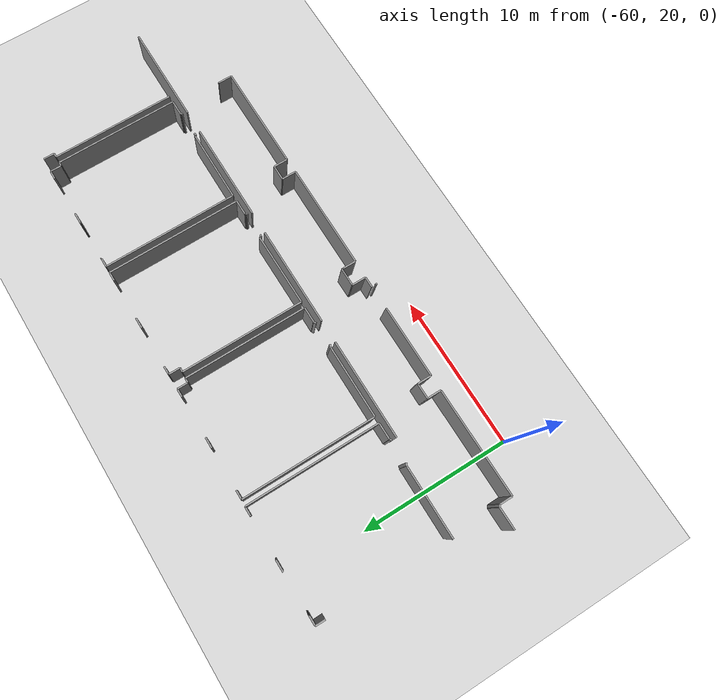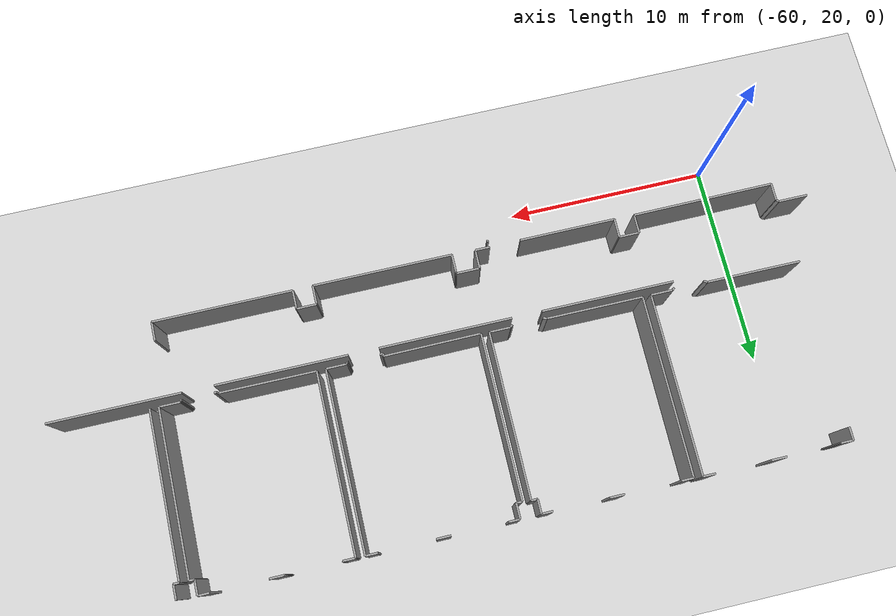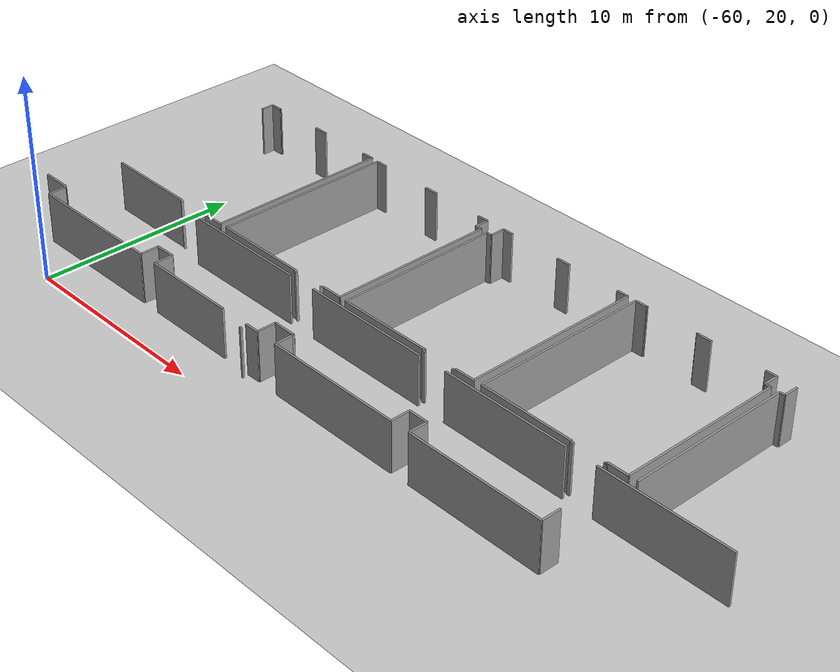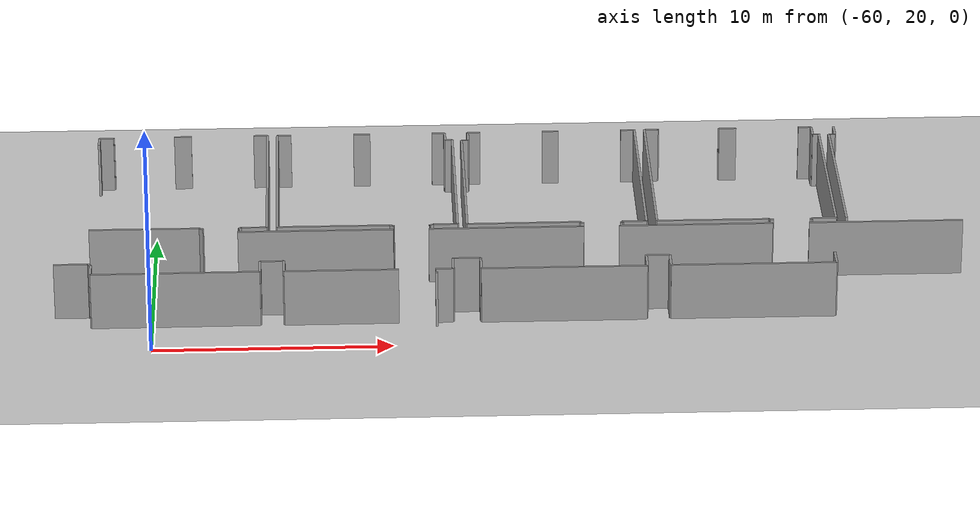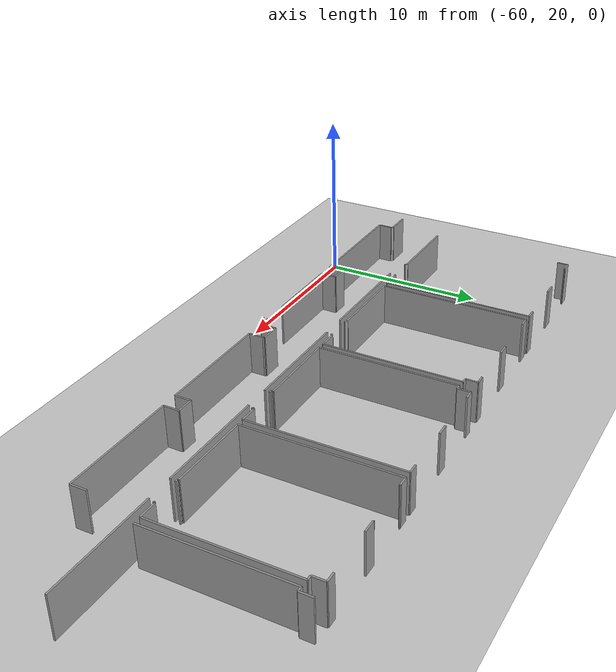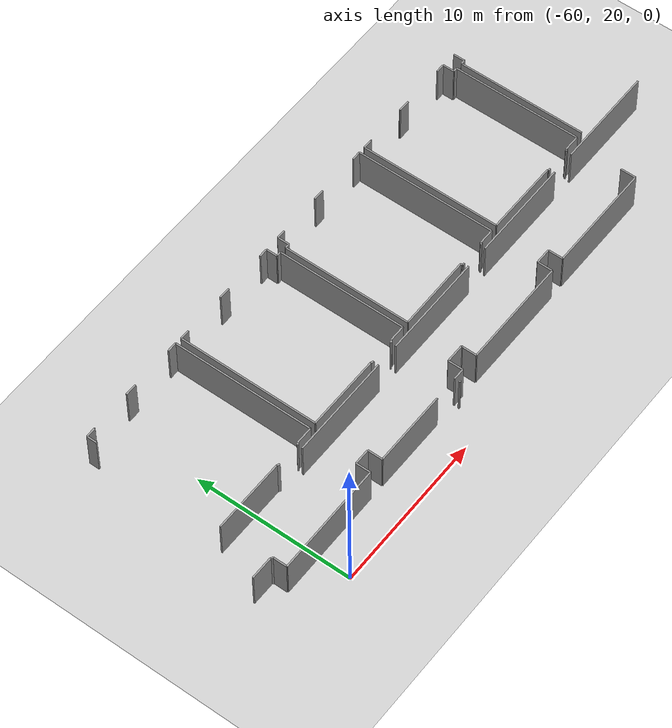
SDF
<sdf version="1.6">
 <world name="default">
  <model name="ground_plane">
   <static>1</static>
   <link name="link">
    <collision name="collision">
     <geometry><plane><normal>0 0 1</normal><size>100 100</size></plane></geometry>
     <surface><friction><ode><mu>100</mu><mu2>50</mu2></ode></friction></surface>
    </collision>
    <visual name="visual">
     <cast_shadows>0</cast_shadows>
     <geometry><plane><normal>0 0 1</normal><size>100 100</size></plane></geometry>
     <material>
      <script><uri>file://media/materials/scripts/gazebo.material</uri><name>Gazebo/Grey</name></script>
     </material>
    </visual>
   </link>
  </model>
  <model name="0510035739_A_40_1_102">
   <static>1</static>
   <link name="Wall_183">
    <collision name="Wall_183_Collision">
     <geometry><box><size>0.0985770015016 0.1 2.5</size></box></geometry>
     <pose>0.0492885007508 0 1.25 0 0 0</pose>
    </collision>
    <visual name="Wall_183_Visual">
     <pose>0.0492885007508 0 1.25 0 0 0</pose>
     <geometry><box><size>0.0985770015016 0.1 2.5</size></box></geometry>
     <material>
      <script><uri>file://media/materials/scripts/gazebo.material</uri><name>Gazebo/Grey</name></script>
      <ambient>1 1 1 1</ambient>
     </material>
    </visual>
    <pose>44.3222066984 -27.9956137055 0 0 0 -1.57079632679</pose>
   </link>
   <link name="Wall_200">
    <collision name="Wall_200_Collision">
     <geometry><box><size>0.861211478235 0.1 2.5</size></box></geometry>
     <pose>0.430605739117 0 1.25 0 0 0</pose>
    </collision>
    <visual name="Wall_200_Visual">
     <pose>0.430605739117 0 1.25 0 0 0</pose>
     <geometry><box><size>0.861211478235 0.1 2.5</size></box></geometry>
     <material>
      <script><uri>file://media/materials/scripts/gazebo.material</uri><name>Gazebo/Grey</name></script>
      <ambient>1 1 1 1</ambient>
     </material>
    </visual>
    <pose>29.9633329215 -27.7447135854 0 0 0 1.57079632679</pose>
   </link>
   <link name="Wall_201">
    <collision name="Wall_201_Collision">
     <geometry><box><size>0.152452766643 0.1 2.5</size></box></geometry>
     <pose>0.0762263833216 0 1.25 0 0 0</pose>
    </collision>
    <visual name="Wall_201_Visual">
     <pose>0.0762263833216 0 1.25 0 0 0</pose>
     <geometry><box><size>0.152452766643 0.1 2.5</size></box></geometry>
     <material>
      <script><uri>file://media/materials/scripts/gazebo.material</uri><name>Gazebo/Grey</name></script>
      <ambient>1 1 1 1</ambient>
     </material>
    </visual>
    <pose>29.9633329215 -26.8835021072 0 0 0 2.41411778917</pose>
   </link>
   <link name="Wall_202">
    <collision name="Wall_202_Collision">
     <geometry><box><size>1.44375825455 0.1 2.5</size></box></geometry>
     <pose>0.721879127275 0 1.25 0 0 0</pose>
    </collision>
    <visual name="Wall_202_Visual">
     <pose>0.721879127275 0 1.25 0 0 0</pose>
     <geometry><box><size>1.44375825455 0.1 2.5</size></box></geometry>
     <material>
      <script><uri>file://media/materials/scripts/gazebo.material</uri><name>Gazebo/Grey</name></script>
      <ambient>1 1 1 1</ambient>
     </material>
    </visual>
    <pose>29.849472664 -26.7821231754 0 0 0 3.14159265359</pose>
   </link>
   <link name="Wall_208">
    <collision name="Wall_208_Collision">
     <geometry><box><size>6.55447907659 0.1 2.5</size></box></geometry>
     <pose>3.27723953829 0 1.25 0 0 0</pose>
    </collision>
    <visual name="Wall_208_Visual">
     <pose>3.27723953829 0 1.25 0 0 0</pose>
     <geometry><box><size>6.55447907659 0.1 2.5</size></box></geometry>
     <material>
      <script><uri>file://media/materials/scripts/gazebo.material</uri><name>Gazebo/Grey</name></script>
      <ambient>1 1 1 1</ambient>
     </material>
    </visual>
    <pose>36.0397008048 -24.0087216448 0 0 0 0.0</pose>
   </link>
   <link name="Wall_209">
    <collision name="Wall_209_Collision">
     <geometry><box><size>6.54276191362 0.1 2.5</size></box></geometry>
     <pose>3.27138095681 0 1.25 0 0 0</pose>
    </collision>
    <visual name="Wall_209_Visual">
     <pose>3.27138095681 0 1.25 0 0 0</pose>
     <geometry><box><size>6.54276191362 0.1 2.5</size></box></geometry>
     <material>
      <script><uri>file://media/materials/scripts/gazebo.material</uri><name>Gazebo/Grey</name></script>
      <ambient>1 1 1 1</ambient>
     </material>
    </visual>
    <pose>44.0855709506 -24.0087216448 0 0 0 0.0</pose>
   </link>
   <link name="Wall_210">
    <collision name="Wall_210_Collision">
     <geometry><box><size>6.49512909894 0.1 2.5</size></box></geometry>
     <pose>3.24756454947 0 1.25 0 0 0</pose>
    </collision>
    <visual name="Wall_210_Visual">
     <pose>3.24756454947 0 1.25 0 0 0</pose>
     <geometry><box><size>6.49512909894 0.1 2.5</size></box></geometry>
     <material>
      <script><uri>file://media/materials/scripts/gazebo.material</uri><name>Gazebo/Grey</name></script>
      <ambient>1 1 1 1</ambient>
     </material>
    </visual>
    <pose>52.1209975381 -24.0087216448 0 0 0 0.0</pose>
   </link>
   <link name="Wall_211">
    <collision name="Wall_211_Collision">
     <geometry><box><size>6.51168595965 0.1 2.5</size></box></geometry>
     <pose>3.25584297983 0 1.25 0 0 0</pose>
    </collision>
    <visual name="Wall_211_Visual">
     <pose>3.25584297983 0 1.25 0 0 0</pose>
     <geometry><box><size>6.51168595965 0.1 2.5</size></box></geometry>
     <material>
      <script><uri>file://media/materials/scripts/gazebo.material</uri><name>Gazebo/Grey</name></script>
      <ambient>1 1 1 1</ambient>
     </material>
    </visual>
    <pose>60.1571882884 -24.0087216448 0 0 0 0.0</pose>
   </link>
   <link name="Wall_224">
    <collision name="Wall_224_Collision">
     <geometry><box><size>0.954694061054 0.1 2.5</size></box></geometry>
     <pose>0.477347030527 0 1.25 0 0 0</pose>
    </collision>
    <visual name="Wall_224_Visual">
     <pose>0.477347030527 0 1.25 0 0 0</pose>
     <geometry><box><size>0.954694061054 0.1 2.5</size></box></geometry>
     <material>
      <script><uri>file://media/materials/scripts/gazebo.material</uri><name>Gazebo/Grey</name></script>
      <ambient>1 1 1 1</ambient>
     </material>
    </visual>
    <pose>60.9812105103 -26.7854345475 0 0 0 -1.57079632679</pose>
   </link>
   <link name="Wall_225">
    <collision name="Wall_225_Collision">
     <geometry><box><size>6.90039010511 0.1 2.5</size></box></geometry>
     <pose>3.45019505256 0 1.25 0 0 0</pose>
    </collision>
    <visual name="Wall_225_Visual">
     <pose>3.45019505256 0 1.25 0 0 0</pose>
     <geometry><box><size>6.90039010511 0.1 2.5</size></box></geometry>
     <material>
      <script><uri>file://media/materials/scripts/gazebo.material</uri><name>Gazebo/Grey</name></script>
      <ambient>1 1 1 1</ambient>
     </material>
    </visual>
    <pose>60.9812105103 -27.7401286086 0 0 0 3.14159265359</pose>
   </link>
   <link name="Wall_226">
    <collision name="Wall_226_Collision">
     <geometry><box><size>0.938137200337 0.1 2.5</size></box></geometry>
     <pose>0.469068600168 0 1.25 0 0 0</pose>
    </collision>
    <visual name="Wall_226_Visual">
     <pose>0.469068600168 0 1.25 0 0 0</pose>
     <geometry><box><size>0.938137200337 0.1 2.5</size></box></geometry>
     <material>
      <script><uri>file://media/materials/scripts/gazebo.material</uri><name>Gazebo/Grey</name></script>
      <ambient>1 1 1 1</ambient>
     </material>
    </visual>
    <pose>54.0808204052 -27.7401286086 0 0 0 1.57079632679</pose>
   </link>
   <link name="Wall_227">
    <collision name="Wall_227_Collision">
     <geometry><box><size>0.988062503423 0.1 2.5</size></box></geometry>
     <pose>0.494031251711 0 1.25 0 0 0</pose>
    </collision>
    <visual name="Wall_227_Visual">
     <pose>0.494031251711 0 1.25 0 0 0</pose>
     <geometry><box><size>0.988062503423 0.1 2.5</size></box></geometry>
     <material>
      <script><uri>file://media/materials/scripts/gazebo.material</uri><name>Gazebo/Grey</name></script>
      <ambient>1 1 1 1</ambient>
     </material>
    </visual>
    <pose>54.0808204052 -26.8019914083 0 0 0 3.14159265359</pose>
   </link>
   <link name="Wall_228">
    <collision name="Wall_228_Collision">
     <geometry><box><size>0.954694061054 0.1 2.5</size></box></geometry>
     <pose>0.477347030527 0 1.25 0 0 0</pose>
    </collision>
    <visual name="Wall_228_Visual">
     <pose>0.477347030527 0 1.25 0 0 0</pose>
     <geometry><box><size>0.954694061054 0.1 2.5</size></box></geometry>
     <material>
      <script><uri>file://media/materials/scripts/gazebo.material</uri><name>Gazebo/Grey</name></script>
      <ambient>1 1 1 1</ambient>
     </material>
    </visual>
    <pose>53.0927579018 -26.8019914083 0 0 0 -1.57079632679</pose>
   </link>
   <link name="Wall_229">
    <collision name="Wall_229_Collision">
     <geometry><box><size>6.90879589594 0.1 2.5</size></box></geometry>
     <pose>3.45439794797 0 1.25 0 0 0</pose>
    </collision>
    <visual name="Wall_229_Visual">
     <pose>3.45439794797 0 1.25 0 0 0</pose>
     <geometry><box><size>6.90879589594 0.1 2.5</size></box></geometry>
     <material>
      <script><uri>file://media/materials/scripts/gazebo.material</uri><name>Gazebo/Grey</name></script>
      <ambient>1 1 1 1</ambient>
     </material>
    </visual>
    <pose>53.0927579018 -27.7566854693 0 0 0 3.14159265359</pose>
   </link>
   <link name="Wall_230">
    <collision name="Wall_230_Collision">
     <geometry><box><size>0.867070059719 0.1 2.5</size></box></geometry>
     <pose>0.43353502986 0 1.25 0 0 0</pose>
    </collision>
    <visual name="Wall_230_Visual">
     <pose>0.43353502986 0 1.25 0 0 0</pose>
     <geometry><box><size>0.867070059719 0.1 2.5</size></box></geometry>
     <material>
      <script><uri>file://media/materials/scripts/gazebo.material</uri><name>Gazebo/Grey</name></script>
      <ambient>1 1 1 1</ambient>
     </material>
    </visual>
    <pose>46.1839620058 -27.7566854693 0 0 0 1.57079632679</pose>
   </link>
   <link name="Wall_231">
    <collision name="Wall_231_Collision">
     <geometry><box><size>0.105199745789 0.1 2.5</size></box></geometry>
     <pose>0.0525998728943 0 1.25 0 0 0</pose>
    </collision>
    <visual name="Wall_231_Visual">
     <pose>0.0525998728943 0 1.25 0 0 0</pose>
     <geometry><box><size>0.105199745789 0.1 2.5</size></box></geometry>
     <material>
      <script><uri>file://media/materials/scripts/gazebo.material</uri><name>Gazebo/Grey</name></script>
      <ambient>1 1 1 1</ambient>
     </material>
    </visual>
    <pose>46.1839620058 -26.8896154096 0 0 0 1.57079632679</pose>
   </link>
   <link name="Wall_232">
    <collision name="Wall_232_Collision">
     <geometry><box><size>1.16840492477 0.1 2.5</size></box></geometry>
     <pose>0.584202462387 0 1.25 0 0 0</pose>
    </collision>
    <visual name="Wall_232_Visual">
     <pose>0.584202462387 0 1.25 0 0 0</pose>
     <geometry><box><size>1.16840492477 0.1 2.5</size></box></geometry>
     <material>
      <script><uri>file://media/materials/scripts/gazebo.material</uri><name>Gazebo/Grey</name></script>
      <ambient>1 1 1 1</ambient>
     </material>
    </visual>
    <pose>46.1839620058 -26.7844156638 0 0 0 3.14159265359</pose>
   </link>
   <link name="Wall_233">
    <collision name="Wall_233_Collision">
     <geometry><box><size>0.938391921271 0.1 2.5</size></box></geometry>
     <pose>0.469195960635 0 1.25 0 0 0</pose>
    </collision>
    <visual name="Wall_233_Visual">
     <pose>0.469195960635 0 1.25 0 0 0</pose>
     <geometry><box><size>0.938391921271 0.1 2.5</size></box></geometry>
     <material>
      <script><uri>file://media/materials/scripts/gazebo.material</uri><name>Gazebo/Grey</name></script>
      <ambient>1 1 1 1</ambient>
     </material>
    </visual>
    <pose>45.0155570811 -26.7844156638 0 0 0 -1.57079632679</pose>
   </link>
   <link name="Wall_234">
    <collision name="Wall_234_Collision">
     <geometry><box><size>0.72773770876 0.1 2.5</size></box></geometry>
     <pose>0.36386885438 0 1.25 0 0 0</pose>
    </collision>
    <visual name="Wall_234_Visual">
     <pose>0.36386885438 0 1.25 0 0 0</pose>
     <geometry><box><size>0.72773770876 0.1 2.5</size></box></geometry>
     <material>
      <script><uri>file://media/materials/scripts/gazebo.material</uri><name>Gazebo/Grey</name></script>
      <ambient>1 1 1 1</ambient>
     </material>
    </visual>
    <pose>45.0155570811 -27.7228075851 0 0 0 3.14159265359</pose>
   </link>
   <link name="Wall_235">
    <collision name="Wall_235_Collision">
     <geometry><box><size>4.75920593296 0.1 2.5</size></box></geometry>
     <pose>2.37960296648 0 1.25 0 0 0</pose>
    </collision>
    <visual name="Wall_235_Visual">
     <pose>2.37960296648 0 1.25 0 0 0</pose>
     <geometry><box><size>4.75920593296 0.1 2.5</size></box></geometry>
     <material>
      <script><uri>file://media/materials/scripts/gazebo.material</uri><name>Gazebo/Grey</name></script>
      <ambient>1 1 1 1</ambient>
     </material>
    </visual>
    <pose>42.7556729536 -27.7228075851 0 0 0 3.14159265359</pose>
   </link>
   <link name="Wall_236">
    <collision name="Wall_236_Collision">
     <geometry><box><size>0.938391921271 0.1 2.5</size></box></geometry>
     <pose>0.469195960635 0 1.25 0 0 0</pose>
    </collision>
    <visual name="Wall_236_Visual">
     <pose>0.469195960635 0 1.25 0 0 0</pose>
     <geometry><box><size>0.938391921271 0.1 2.5</size></box></geometry>
     <material>
      <script><uri>file://media/materials/scripts/gazebo.material</uri><name>Gazebo/Grey</name></script>
      <ambient>1 1 1 1</ambient>
     </material>
    </visual>
    <pose>37.9964670206 -27.7228075851 0 0 0 1.57079632679</pose>
   </link>
   <link name="Wall_237">
    <collision name="Wall_237_Collision">
     <geometry><box><size>1.00538352694 0.1 2.5</size></box></geometry>
     <pose>0.502691763471 0 1.25 0 0 0</pose>
    </collision>
    <visual name="Wall_237_Visual">
     <pose>0.502691763471 0 1.25 0 0 0</pose>
     <geometry><box><size>1.00538352694 0.1 2.5</size></box></geometry>
     <material>
      <script><uri>file://media/materials/scripts/gazebo.material</uri><name>Gazebo/Grey</name></script>
      <ambient>1 1 1 1</ambient>
     </material>
    </visual>
    <pose>37.9964670206 -26.7844156638 0 0 0 3.14159265359</pose>
   </link>
   <link name="Wall_238">
    <collision name="Wall_238_Collision">
     <geometry><box><size>0.928712525775 0.1 2.5</size></box></geometry>
     <pose>0.464356262887 0 1.25 0 0 0</pose>
    </collision>
    <visual name="Wall_238_Visual">
     <pose>0.464356262887 0 1.25 0 0 0</pose>
     <geometry><box><size>0.928712525775 0.1 2.5</size></box></geometry>
     <material>
      <script><uri>file://media/materials/scripts/gazebo.material</uri><name>Gazebo/Grey</name></script>
      <ambient>1 1 1 1</ambient>
     </material>
    </visual>
    <pose>36.9910834937 -26.7844156638 0 0 0 -1.57079632679</pose>
   </link>
   <link name="Wall_239">
    <collision name="Wall_239_Collision">
     <geometry><box><size>7.02782155023 0.1 2.5</size></box></geometry>
     <pose>3.51391077511 0 1.25 0 0 0</pose>
    </collision>
    <visual name="Wall_239_Visual">
     <pose>3.51391077511 0 1.25 0 0 0</pose>
     <geometry><box><size>7.02782155023 0.1 2.5</size></box></geometry>
     <material>
      <script><uri>file://media/materials/scripts/gazebo.material</uri><name>Gazebo/Grey</name></script>
      <ambient>1 1 1 1</ambient>
     </material>
    </visual>
    <pose>36.9910834937 -27.7131281896 0 0 0 -3.13709830183</pose>
   </link>
   <link name="Wall_297">
    <collision name="Wall_297_Collision">
     <geometry><box><size>0.64597228891 0.1 2.5</size></box></geometry>
     <pose>0.322986144455 0 1.25 0 0 0</pose>
    </collision>
    <visual name="Wall_297_Visual">
     <pose>0.322986144455 0 1.25 0 0 0</pose>
     <geometry><box><size>0.64597228891 0.1 2.5</size></box></geometry>
     <material>
      <script><uri>file://media/materials/scripts/gazebo.material</uri><name>Gazebo/Grey</name></script>
      <ambient>1 1 1 1</ambient>
     </material>
    </visual>
    <pose>29.9381155491 -15.3212094659 0 0 0 1.57079632679</pose>
   </link>
   <link name="Wall_298">
    <collision name="Wall_298_Collision">
     <geometry><box><size>0.608018869727 0.1 2.5</size></box></geometry>
     <pose>0.304009434863 0 1.25 0 0 0</pose>
    </collision>
    <visual name="Wall_298_Visual">
     <pose>0.304009434863 0 1.25 0 0 0</pose>
     <geometry><box><size>0.608018869727 0.1 2.5</size></box></geometry>
     <material>
      <script><uri>file://media/materials/scripts/gazebo.material</uri><name>Gazebo/Grey</name></script>
      <ambient>1 1 1 1</ambient>
     </material>
    </visual>
    <pose>29.9381155491 -14.675237177 0 0 0 0.0</pose>
   </link>
   <link name="Wall_299">
    <collision name="Wall_299_Collision">
     <geometry><box><size>0.0379534191828 0.1 2.5</size></box></geometry>
     <pose>0.0189767095914 0 1.25 0 0 0</pose>
    </collision>
    <visual name="Wall_299_Visual">
     <pose>0.0189767095914 0 1.25 0 0 0</pose>
     <geometry><box><size>0.0379534191828 0.1 2.5</size></box></geometry>
     <material>
      <script><uri>file://media/materials/scripts/gazebo.material</uri><name>Gazebo/Grey</name></script>
      <ambient>1 1 1 1</ambient>
     </material>
    </visual>
    <pose>30.5461344188 -14.675237177 0 0 0 1.57079632679</pose>
   </link>
   <link name="Wall_300">
    <collision name="Wall_300_Collision">
     <geometry><box><size>0.747351220686 0.1 2.5</size></box></geometry>
     <pose>0.373675610343 0 1.25 0 0 0</pose>
    </collision>
    <visual name="Wall_300_Visual">
     <pose>0.373675610343 0 1.25 0 0 0</pose>
     <geometry><box><size>0.747351220686 0.1 2.5</size></box></geometry>
     <material>
      <script><uri>file://media/materials/scripts/gazebo.material</uri><name>Gazebo/Grey</name></script>
      <ambient>1 1 1 1</ambient>
     </material>
    </visual>
    <pose>33.1926849242 -14.6372837578 0 0 0 0.0</pose>
   </link>
   <link name="Wall_301">
    <collision name="Wall_301_Collision">
     <geometry><box><size>0.620754916432 0.1 2.5</size></box></geometry>
     <pose>0.310377458216 0 1.25 0 0 0</pose>
    </collision>
    <visual name="Wall_301_Visual">
     <pose>0.310377458216 0 1.25 0 0 0</pose>
     <geometry><box><size>0.620754916432 0.1 2.5</size></box></geometry>
     <material>
      <script><uri>file://media/materials/scripts/gazebo.material</uri><name>Gazebo/Grey</name></script>
      <ambient>1 1 1 1</ambient>
     </material>
    </visual>
    <pose>36.6500121629 -14.6372837578 0 0 0 0.0</pose>
   </link>
   <link name="Wall_302">
    <collision name="Wall_302_Collision">
     <geometry><box><size>8.9679599273 0.1 2.5</size></box></geometry>
     <pose>4.48397996365 0 1.25 0 0 0</pose>
    </collision>
    <visual name="Wall_302_Visual">
     <pose>4.48397996365 0 1.25 0 0 0</pose>
     <geometry><box><size>8.9679599273 0.1 2.5</size></box></geometry>
     <material>
      <script><uri>file://media/materials/scripts/gazebo.material</uri><name>Gazebo/Grey</name></script>
      <ambient>1 1 1 1</ambient>
     </material>
    </visual>
    <pose>37.2707670794 -14.6372837578 0 0 0 -1.57079632679</pose>
   </link>
   <link name="Wall_303">
    <collision name="Wall_303_Collision">
     <geometry><box><size>1.08281869091 0.1 2.5</size></box></geometry>
     <pose>0.541409345456 0 1.25 0 0 0</pose>
    </collision>
    <visual name="Wall_303_Visual">
     <pose>0.541409345456 0 1.25 0 0 0</pose>
     <geometry><box><size>1.08281869091 0.1 2.5</size></box></geometry>
     <material>
      <script><uri>file://media/materials/scripts/gazebo.material</uri><name>Gazebo/Grey</name></script>
      <ambient>1 1 1 1</ambient>
     </material>
    </visual>
    <pose>37.2707670794 -23.6052436851 0 0 0 3.14159265359</pose>
   </link>
   <link name="Wall_304">
    <collision name="Wall_304_Collision">
     <geometry><box><size>0.134577774466 0.1 2.5</size></box></geometry>
     <pose>0.0672888872328 0 1.25 0 0 0</pose>
    </collision>
    <visual name="Wall_304_Visual">
     <pose>0.0672888872328 0 1.25 0 0 0</pose>
     <geometry><box><size>0.134577774466 0.1 2.5</size></box></geometry>
     <material>
      <script><uri>file://media/materials/scripts/gazebo.material</uri><name>Gazebo/Grey</name></script>
      <ambient>1 1 1 1</ambient>
     </material>
    </visual>
    <pose>36.1879483884 -23.6052436851 0 0 0 -2.43255578818</pose>
   </link>
   <link name="Wall_305">
    <collision name="Wall_305_Collision">
     <geometry><box><size>0.186364530862 0.1 2.5</size></box></geometry>
     <pose>0.0931822654311 0 1.25 0 0 0</pose>
    </collision>
    <visual name="Wall_305_Visual">
     <pose>0.0931822654311 0 1.25 0 0 0</pose>
     <geometry><box><size>0.186364530862 0.1 2.5</size></box></geometry>
     <material>
      <script><uri>file://media/materials/scripts/gazebo.material</uri><name>Gazebo/Grey</name></script>
      <ambient>1 1 1 1</ambient>
     </material>
    </visual>
    <pose>34.5936500618 -23.6928676865 0 0 0 2.67672255131</pose>
   </link>
   <link name="Wall_306">
    <collision name="Wall_306_Collision">
     <geometry><box><size>4.6563189919 0.1 2.5</size></box></geometry>
     <pose>2.32815949595 0 1.25 0 0 0</pose>
    </collision>
    <visual name="Wall_306_Visual">
     <pose>2.32815949595 0 1.25 0 0 0</pose>
     <geometry><box><size>4.6563189919 0.1 2.5</size></box></geometry>
     <material>
      <script><uri>file://media/materials/scripts/gazebo.material</uri><name>Gazebo/Grey</name></script>
      <ambient>1 1 1 1</ambient>
     </material>
    </visual>
    <pose>34.4270625709 -23.6093192201 0 0 0 3.13863861404</pose>
   </link>
   <link name="Wall_307">
    <collision name="Wall_307_Collision">
     <geometry><box><size>8.92796874065 0.1 2.5</size></box></geometry>
     <pose>4.46398437032 0 1.25 0 0 0</pose>
    </collision>
    <visual name="Wall_307_Visual">
     <pose>4.46398437032 0 1.25 0 0 0</pose>
     <geometry><box><size>8.92796874065 0.1 2.5</size></box></geometry>
     <material>
      <script><uri>file://media/materials/scripts/gazebo.material</uri><name>Gazebo/Grey</name></script>
      <ambient>1 1 1 1</ambient>
     </material>
    </visual>
    <pose>37.6918207834 -23.5988756618 0 0 0 1.57079632679</pose>
   </link>
   <link name="Wall_308">
    <collision name="Wall_308_Collision">
     <geometry><box><size>0.599103637033 0.1 2.5</size></box></geometry>
     <pose>0.299551818516 0 1.25 0 0 0</pose>
    </collision>
    <visual name="Wall_308_Visual">
     <pose>0.299551818516 0 1.25 0 0 0</pose>
     <geometry><box><size>0.599103637033 0.1 2.5</size></box></geometry>
     <material>
      <script><uri>file://media/materials/scripts/gazebo.material</uri><name>Gazebo/Grey</name></script>
      <ambient>1 1 1 1</ambient>
     </material>
    </visual>
    <pose>37.6918207834 -14.6709069211 0 0 0 0.0</pose>
   </link>
   <link name="Wall_309">
    <collision name="Wall_309_Collision">
     <geometry><box><size>0.726718825023 0.1 2.5</size></box></geometry>
     <pose>0.363359412512 0 1.25 0 0 0</pose>
    </collision>
    <visual name="Wall_309_Visual">
     <pose>0.363359412512 0 1.25 0 0 0</pose>
     <geometry><box><size>0.726718825023 0.1 2.5</size></box></geometry>
     <material>
      <script><uri>file://media/materials/scripts/gazebo.material</uri><name>Gazebo/Grey</name></script>
      <ambient>1 1 1 1</ambient>
     </material>
    </visual>
    <pose>41.0110892759 -14.6709069211 0 0 0 0.0</pose>
   </link>
   <link name="Wall_310">
    <collision name="Wall_310_Collision">
     <geometry><box><size>0.561659659718 0.1 2.5</size></box></geometry>
     <pose>0.280829829859 0 1.25 0 0 0</pose>
    </collision>
    <visual name="Wall_310_Visual">
     <pose>0.280829829859 0 1.25 0 0 0</pose>
     <geometry><box><size>0.561659659718 0.1 2.5</size></box></geometry>
     <material>
      <script><uri>file://media/materials/scripts/gazebo.material</uri><name>Gazebo/Grey</name></script>
      <ambient>1 1 1 1</ambient>
     </material>
    </visual>
    <pose>44.435812235 -14.6709069211 0 0 0 0.0</pose>
   </link>
   <link name="Wall_311">
    <collision name="Wall_311_Collision">
     <geometry><box><size>0.705831708426 0.1 2.5</size></box></geometry>
     <pose>0.352915854213 0 1.25 0 0 0</pose>
    </collision>
    <visual name="Wall_311_Visual">
     <pose>0.352915854213 0 1.25 0 0 0</pose>
     <geometry><box><size>0.705831708426 0.1 2.5</size></box></geometry>
     <material>
      <script><uri>file://media/materials/scripts/gazebo.material</uri><name>Gazebo/Grey</name></script>
      <ambient>1 1 1 1</ambient>
     </material>
    </visual>
    <pose>44.9974718947 -14.6709069211 0 0 0 -1.57079632679</pose>
   </link>
   <link name="Wall_312">
    <collision name="Wall_312_Collision">
     <geometry><box><size>0.312542586156 0.1 2.5</size></box></geometry>
     <pose>0.156271293078 0 1.25 0 0 0</pose>
    </collision>
    <visual name="Wall_312_Visual">
     <pose>0.156271293078 0 1.25 0 0 0</pose>
     <geometry><box><size>0.312542586156 0.1 2.5</size></box></geometry>
     <material>
      <script><uri>file://media/materials/scripts/gazebo.material</uri><name>Gazebo/Grey</name></script>
      <ambient>1 1 1 1</ambient>
     </material>
    </visual>
    <pose>44.9974718947 -15.3767386296 0 0 0 0.0</pose>
   </link>
   <link name="Wall_313">
    <collision name="Wall_313_Collision">
     <geometry><box><size>8.20303296216 0.1 2.5</size></box></geometry>
     <pose>4.10151648108 0 1.25 0 0 0</pose>
    </collision>
    <visual name="Wall_313_Visual">
     <pose>4.10151648108 0 1.25 0 0 0</pose>
     <geometry><box><size>8.20303296216 0.1 2.5</size></box></geometry>
     <material>
      <script><uri>file://media/materials/scripts/gazebo.material</uri><name>Gazebo/Grey</name></script>
      <ambient>1 1 1 1</ambient>
     </material>
    </visual>
    <pose>45.3100144809 -15.3767386296 0 0 0 -1.57079632679</pose>
   </link>
   <link name="Wall_314">
    <collision name="Wall_314_Collision">
     <geometry><box><size>1.02830841101 0.1 2.5</size></box></geometry>
     <pose>0.514154205506 0 1.25 0 0 0</pose>
    </collision>
    <visual name="Wall_314_Visual">
     <pose>0.514154205506 0 1.25 0 0 0</pose>
     <geometry><box><size>1.02830841101 0.1 2.5</size></box></geometry>
     <material>
      <script><uri>file://media/materials/scripts/gazebo.material</uri><name>Gazebo/Grey</name></script>
      <ambient>1 1 1 1</ambient>
     </material>
    </visual>
    <pose>45.3100144809 -23.5797715917 0 0 0 3.14159265359</pose>
   </link>
   <link name="Wall_315">
    <collision name="Wall_315_Collision">
     <geometry><box><size>0.174100407527 0.1 2.5</size></box></geometry>
     <pose>0.0870502037634 0 1.25 0 0 0</pose>
    </collision>
    <visual name="Wall_315_Visual">
     <pose>0.0870502037634 0 1.25 0 0 0</pose>
     <geometry><box><size>0.174100407527 0.1 2.5</size></box></geometry>
     <material>
      <script><uri>file://media/materials/scripts/gazebo.material</uri><name>Gazebo/Grey</name></script>
      <ambient>1 1 1 1</ambient>
     </material>
    </visual>
    <pose>44.2817060699 -23.5797715917 0 0 0 -2.5361405226</pose>
   </link>
   <link name="Wall_316">
    <collision name="Wall_316_Collision">
     <geometry><box><size>0.204486342414 0.1 2.5</size></box></geometry>
     <pose>0.102243171207 0 1.25 0 0 0</pose>
    </collision>
    <visual name="Wall_316_Visual">
     <pose>0.102243171207 0 1.25 0 0 0</pose>
     <geometry><box><size>0.204486342414 0.1 2.5</size></box></geometry>
     <material>
      <script><uri>file://media/materials/scripts/gazebo.material</uri><name>Gazebo/Grey</name></script>
      <ambient>1 1 1 1</ambient>
     </material>
    </visual>
    <pose>42.6374824402 -23.6788580351 0 0 0 2.78398833357</pose>
   </link>
   <link name="Wall_317">
    <collision name="Wall_317_Collision">
     <geometry><box><size>4.75411894545 0.1 2.5</size></box></geometry>
     <pose>2.37705947273 0 1.25 0 0 0</pose>
    </collision>
    <visual name="Wall_317_Visual">
     <pose>2.37705947273 0 1.25 0 0 0</pose>
     <geometry><box><size>4.75411894545 0.1 2.5</size></box></geometry>
     <material>
      <script><uri>file://media/materials/scripts/gazebo.material</uri><name>Gazebo/Grey</name></script>
      <ambient>1 1 1 1</ambient>
     </material>
    </visual>
    <pose>42.4459322977 -23.6072814526 0 0 0 3.1398245457</pose>
   </link>
   <link name="Wall_318">
    <collision name="Wall_318_Collision">
     <geometry><box><size>8.18749498518 0.1 2.5</size></box></geometry>
     <pose>4.09374749259 0 1.25 0 0 0</pose>
    </collision>
    <visual name="Wall_318_Visual">
     <pose>4.09374749259 0 1.25 0 0 0</pose>
     <geometry><box><size>8.18749498518 0.1 2.5</size></box></geometry>
     <material>
      <script><uri>file://media/materials/scripts/gazebo.material</uri><name>Gazebo/Grey</name></script>
      <ambient>1 1 1 1</ambient>
     </material>
    </visual>
    <pose>45.7147660452 -23.6052436851 0 0 0 1.57079632679</pose>
   </link>
   <link name="Wall_319">
    <collision name="Wall_319_Collision">
     <geometry><box><size>0.287070492745 0.1 2.5</size></box></geometry>
     <pose>0.143535246372 0 1.25 0 0 0</pose>
    </collision>
    <visual name="Wall_319_Visual">
     <pose>0.143535246372 0 1.25 0 0 0</pose>
     <geometry><box><size>0.287070492745 0.1 2.5</size></box></geometry>
     <material>
      <script><uri>file://media/materials/scripts/gazebo.material</uri><name>Gazebo/Grey</name></script>
      <ambient>1 1 1 1</ambient>
     </material>
    </visual>
    <pose>45.7147660452 -15.4177487 0 0 0 0.0</pose>
   </link>
   <link name="Wall_320">
    <collision name="Wall_320_Collision">
     <geometry><box><size>0.756521174314 0.1 2.5</size></box></geometry>
     <pose>0.378260587157 0 1.25 0 0 0</pose>
    </collision>
    <visual name="Wall_320_Visual">
     <pose>0.378260587157 0 1.25 0 0 0</pose>
     <geometry><box><size>0.756521174314 0.1 2.5</size></box></geometry>
     <material>
      <script><uri>file://media/materials/scripts/gazebo.material</uri><name>Gazebo/Grey</name></script>
      <ambient>1 1 1 1</ambient>
     </material>
    </visual>
    <pose>46.0018365379 -15.4177487 0 0 0 1.57079632679</pose>
   </link>
   <link name="Wall_321">
    <collision name="Wall_321_Collision">
     <geometry><box><size>0.545866961803 0.1 2.5</size></box></geometry>
     <pose>0.272933480902 0 1.25 0 0 0</pose>
    </collision>
    <visual name="Wall_321_Visual">
     <pose>0.272933480902 0 1.25 0 0 0</pose>
     <geometry><box><size>0.545866961803 0.1 2.5</size></box></geometry>
     <material>
      <script><uri>file://media/materials/scripts/gazebo.material</uri><name>Gazebo/Grey</name></script>
      <ambient>1 1 1 1</ambient>
     </material>
    </visual>
    <pose>46.0018365379 -14.6612275257 0 0 0 0.0</pose>
   </link>
   <link name="Wall_322">
    <collision name="Wall_322_Collision">
     <geometry><box><size>0.708633638701 0.1 2.5</size></box></geometry>
     <pose>0.354316819351 0 1.25 0 0 0</pose>
    </collision>
    <visual name="Wall_322_Visual">
     <pose>0.354316819351 0 1.25 0 0 0</pose>
     <geometry><box><size>0.708633638701 0.1 2.5</size></box></geometry>
     <material>
      <script><uri>file://media/materials/scripts/gazebo.material</uri><name>Gazebo/Grey</name></script>
      <ambient>1 1 1 1</ambient>
     </material>
    </visual>
    <pose>49.2673589133 -14.6612275257 0 0 0 0.0</pose>
   </link>
   <link name="Wall_323">
    <collision name="Wall_323_Collision">
     <geometry><box><size>0.593754497416 0.1 2.5</size></box></geometry>
     <pose>0.296877248708 0 1.25 0 0 0</pose>
    </collision>
    <visual name="Wall_323_Visual">
     <pose>0.296877248708 0 1.25 0 0 0</pose>
     <geometry><box><size>0.593754497416 0.1 2.5</size></box></geometry>
     <material>
      <script><uri>file://media/materials/scripts/gazebo.material</uri><name>Gazebo/Grey</name></script>
      <ambient>1 1 1 1</ambient>
     </material>
    </visual>
    <pose>52.70507264 -14.6612275257 0 0 0 0.0</pose>
   </link>
   <link name="Wall_324">
    <collision name="Wall_324_Collision">
     <geometry><box><size>8.94070478735 0.1 2.5</size></box></geometry>
     <pose>4.47035239368 0 1.25 0 0 0</pose>
    </collision>
    <visual name="Wall_324_Visual">
     <pose>4.47035239368 0 1.25 0 0 0</pose>
     <geometry><box><size>8.94070478735 0.1 2.5</size></box></geometry>
     <material>
      <script><uri>file://media/materials/scripts/gazebo.material</uri><name>Gazebo/Grey</name></script>
      <ambient>1 1 1 1</ambient>
     </material>
    </visual>
    <pose>53.2988271375 -14.6612275257 0 0 0 -1.57079632679</pose>
   </link>
   <link name="Wall_325">
    <collision name="Wall_325_Collision">
     <geometry><box><size>1.02219510859 0.1 2.5</size></box></geometry>
     <pose>0.511097554297 0 1.25 0 0 0</pose>
    </collision>
    <visual name="Wall_325_Visual">
     <pose>0.511097554297 0 1.25 0 0 0</pose>
     <geometry><box><size>1.02219510859 0.1 2.5</size></box></geometry>
     <material>
      <script><uri>file://media/materials/scripts/gazebo.material</uri><name>Gazebo/Grey</name></script>
      <ambient>1 1 1 1</ambient>
     </material>
    </visual>
    <pose>53.2988271375 -23.601932313 0 0 0 3.14159265359</pose>
   </link>
   <link name="Wall_326">
    <collision name="Wall_326_Collision">
     <geometry><box><size>0.0990864433698 0.1 2.5</size></box></geometry>
     <pose>0.0495432216849 0 1.25 0 0 0</pose>
    </collision>
    <visual name="Wall_326_Visual">
     <pose>0.0495432216849 0 1.25 0 0 0</pose>
     <geometry><box><size>0.0990864433698 0.1 2.5</size></box></geometry>
     <material>
      <script><uri>file://media/materials/scripts/gazebo.material</uri><name>Gazebo/Grey</name></script>
      <ambient>1 1 1 1</ambient>
     </material>
    </visual>
    <pose>52.2766320289 -23.601932313 0 0 0 -1.57079632679</pose>
   </link>
   <link name="Wall_327">
    <collision name="Wall_327_Collision">
     <geometry><box><size>0.0990864433698 0.1 2.5</size></box></geometry>
     <pose>0.0495432216849 0 1.25 0 0 0</pose>
    </collision>
    <visual name="Wall_327_Visual">
     <pose>0.0495432216849 0 1.25 0 0 0</pose>
     <geometry><box><size>0.0990864433698 0.1 2.5</size></box></geometry>
     <material>
      <script><uri>file://media/materials/scripts/gazebo.material</uri><name>Gazebo/Grey</name></script>
      <ambient>1 1 1 1</ambient>
     </material>
    </visual>
    <pose>52.2766320289 -23.7010187564 0 0 0 3.14159265359</pose>
   </link>
   <link name="Wall_328">
    <collision name="Wall_328_Collision">
     <geometry><box><size>0.154106165138 0.1 2.5</size></box></geometry>
     <pose>0.0770530825691 0 1.25 0 0 0</pose>
    </collision>
    <visual name="Wall_328_Visual">
     <pose>0.0770530825691 0 1.25 0 0 0</pose>
     <geometry><box><size>0.154106165138 0.1 2.5</size></box></geometry>
     <material>
      <script><uri>file://media/materials/scripts/gazebo.material</uri><name>Gazebo/Grey</name></script>
      <ambient>1 1 1 1</ambient>
     </material>
    </visual>
    <pose>50.6576257716 -23.7010187564 0 0 0 3.14159265359</pose>
   </link>
   <link name="Wall_329">
    <collision name="Wall_329_Collision">
     <geometry><box><size>0.121247164638 0.1 2.5</size></box></geometry>
     <pose>0.0606235823188 0 1.25 0 0 0</pose>
    </collision>
    <visual name="Wall_329_Visual">
     <pose>0.0606235823188 0 1.25 0 0 0</pose>
     <geometry><box><size>0.121247164638 0.1 2.5</size></box></geometry>
     <material>
      <script><uri>file://media/materials/scripts/gazebo.material</uri><name>Gazebo/Grey</name></script>
      <ambient>1 1 1 1</ambient>
     </material>
    </visual>
    <pose>50.5035196065 -23.7010187564 0 0 0 1.57079632679</pose>
   </link>
   <link name="Wall_330">
    <collision name="Wall_330_Collision">
     <geometry><box><size>4.78882130577 0.1 2.5</size></box></geometry>
     <pose>2.39441065288 0 1.25 0 0 0</pose>
    </collision>
    <visual name="Wall_330_Visual">
     <pose>2.39441065288 0 1.25 0 0 0</pose>
     <geometry><box><size>4.78882130577 0.1 2.5</size></box></geometry>
     <material>
      <script><uri>file://media/materials/scripts/gazebo.material</uri><name>Gazebo/Grey</name></script>
      <ambient>1 1 1 1</ambient>
     </material>
    </visual>
    <pose>50.5035196065 -23.5797715917 0 0 0 -3.13627355482</pose>
   </link>
   <link name="Wall_331">
    <collision name="Wall_331_Collision">
     <geometry><box><size>8.92363848477 0.1 2.5</size></box></geometry>
     <pose>4.46181924238 0 1.25 0 0 0</pose>
    </collision>
    <visual name="Wall_331_Visual">
     <pose>4.46181924238 0 1.25 0 0 0</pose>
     <geometry><box><size>8.92363848477 0.1 2.5</size></box></geometry>
     <material>
      <script><uri>file://media/materials/scripts/gazebo.material</uri><name>Gazebo/Grey</name></script>
      <ambient>1 1 1 1</ambient>
     </material>
    </visual>
    <pose>53.7412774 -23.5907245919 0 0 0 1.57079632679</pose>
   </link>
   <link name="Wall_332">
    <collision name="Wall_332_Collision">
     <geometry><box><size>0.598084753296 0.1 2.5</size></box></geometry>
     <pose>0.299042376648 0 1.25 0 0 0</pose>
    </collision>
    <visual name="Wall_332_Visual">
     <pose>0.299042376648 0 1.25 0 0 0</pose>
     <geometry><box><size>0.598084753296 0.1 2.5</size></box></geometry>
     <material>
      <script><uri>file://media/materials/scripts/gazebo.material</uri><name>Gazebo/Grey</name></script>
      <ambient>1 1 1 1</ambient>
     </material>
    </visual>
    <pose>53.7412774 -14.6670861071 0 0 0 0.0</pose>
   </link>
   <link name="Wall_333">
    <collision name="Wall_333_Collision">
     <geometry><box><size>0.0506894658884 0.1 2.5</size></box></geometry>
     <pose>0.0253447329442 0 1.25 0 0 0</pose>
    </collision>
    <visual name="Wall_333_Visual">
     <pose>0.0253447329442 0 1.25 0 0 0</pose>
     <geometry><box><size>0.0506894658884 0.1 2.5</size></box></geometry>
     <material>
      <script><uri>file://media/materials/scripts/gazebo.material</uri><name>Gazebo/Grey</name></script>
      <ambient>1 1 1 1</ambient>
     </material>
    </visual>
    <pose>54.3393621533 -14.6670861071 0 0 0 1.57079632679</pose>
   </link>
   <link name="Wall_334">
    <collision name="Wall_334_Collision">
     <geometry><box><size>0.036170372644 0.1 2.5</size></box></geometry>
     <pose>0.018085186322 0 1.25 0 0 0</pose>
    </collision>
    <visual name="Wall_334_Visual">
     <pose>0.018085186322 0 1.25 0 0 0</pose>
     <geometry><box><size>0.036170372644 0.1 2.5</size></box></geometry>
     <material>
      <script><uri>file://media/materials/scripts/gazebo.material</uri><name>Gazebo/Grey</name></script>
      <ambient>1 1 1 1</ambient>
     </material>
    </visual>
    <pose>57.0256491245 -14.6163966412 0 0 0 -1.57079632679</pose>
   </link>
   <link name="Wall_335">
    <collision name="Wall_335_Collision">
     <geometry><box><size>0.745822895082 0.1 2.5</size></box></geometry>
     <pose>0.372911447541 0 1.25 0 0 0</pose>
    </collision>
    <visual name="Wall_335_Visual">
     <pose>0.372911447541 0 1.25 0 0 0</pose>
     <geometry><box><size>0.745822895082 0.1 2.5</size></box></geometry>
     <material>
      <script><uri>file://media/materials/scripts/gazebo.material</uri><name>Gazebo/Grey</name></script>
      <ambient>1 1 1 1</ambient>
     </material>
    </visual>
    <pose>57.0256491245 -14.6525670139 0 0 0 0.0</pose>
   </link>
   <link name="Wall_336">
    <collision name="Wall_336_Collision">
     <geometry><box><size>0.564971031862 0.1 2.5</size></box></geometry>
     <pose>0.282485515931 0 1.25 0 0 0</pose>
    </collision>
    <visual name="Wall_336_Visual">
     <pose>0.282485515931 0 1.25 0 0 0</pose>
     <geometry><box><size>0.564971031862 0.1 2.5</size></box></geometry>
     <material>
      <script><uri>file://media/materials/scripts/gazebo.material</uri><name>Gazebo/Grey</name></script>
      <ambient>1 1 1 1</ambient>
     </material>
    </visual>
    <pose>60.5010615495 -14.6525670139 0 0 0 0.0</pose>
   </link>
   <link name="Wall_337">
    <collision name="Wall_337_Collision">
     <geometry><box><size>0.738690708927 0.1 2.5</size></box></geometry>
     <pose>0.369345354463 0 1.25 0 0 0</pose>
    </collision>
    <visual name="Wall_337_Visual">
     <pose>0.369345354463 0 1.25 0 0 0</pose>
     <geometry><box><size>0.738690708927 0.1 2.5</size></box></geometry>
     <material>
      <script><uri>file://media/materials/scripts/gazebo.material</uri><name>Gazebo/Grey</name></script>
      <ambient>1 1 1 1</ambient>
     </material>
    </visual>
    <pose>61.0660325814 -14.6525670139 0 0 0 -1.57079632679</pose>
   </link>
   <link name="Wall_338">
    <collision name="Wall_338_Collision">
     <geometry><box><size>0.267711701752 0.1 2.5</size></box></geometry>
     <pose>0.133855850876 0 1.25 0 0 0</pose>
    </collision>
    <visual name="Wall_338_Visual">
     <pose>0.133855850876 0 1.25 0 0 0</pose>
     <geometry><box><size>0.267711701752 0.1 2.5</size></box></geometry>
     <material>
      <script><uri>file://media/materials/scripts/gazebo.material</uri><name>Gazebo/Grey</name></script>
      <ambient>1 1 1 1</ambient>
     </material>
    </visual>
    <pose>61.0660325814 -15.3912577228 0 0 0 0.0</pose>
   </link>
   <link name="Wall_339">
    <collision name="Wall_339_Collision">
     <geometry><box><size>8.19641021788 0.1 2.5</size></box></geometry>
     <pose>4.09820510894 0 1.25 0 0 0</pose>
    </collision>
    <visual name="Wall_339_Visual">
     <pose>4.09820510894 0 1.25 0 0 0</pose>
     <geometry><box><size>8.19641021788 0.1 2.5</size></box></geometry>
     <material>
      <script><uri>file://media/materials/scripts/gazebo.material</uri><name>Gazebo/Grey</name></script>
      <ambient>1 1 1 1</ambient>
     </material>
    </visual>
    <pose>61.3337442831 -15.3912577228 0 0 0 -1.57079632679</pose>
   </link>
   <link name="Wall_340">
    <collision name="Wall_340_Collision">
     <geometry><box><size>1.03544059717 0.1 2.5</size></box></geometry>
     <pose>0.517720298584 0 1.25 0 0 0</pose>
    </collision>
    <visual name="Wall_340_Visual">
     <pose>0.517720298584 0 1.25 0 0 0</pose>
     <geometry><box><size>1.03544059717 0.1 2.5</size></box></geometry>
     <material>
      <script><uri>file://media/materials/scripts/gazebo.material</uri><name>Gazebo/Grey</name></script>
      <ambient>1 1 1 1</ambient>
     </material>
    </visual>
    <pose>61.3337442831 -23.5876679407 0 0 0 3.14159265359</pose>
   </link>
   <link name="Wall_341">
    <collision name="Wall_341_Collision">
     <geometry><box><size>0.0797276523773 0.1 2.5</size></box></geometry>
     <pose>0.0398638261886 0 1.25 0 0 0</pose>
    </collision>
    <visual name="Wall_341_Visual">
     <pose>0.0398638261886 0 1.25 0 0 0</pose>
     <geometry><box><size>0.0797276523773 0.1 2.5</size></box></geometry>
     <material>
      <script><uri>file://media/materials/scripts/gazebo.material</uri><name>Gazebo/Grey</name></script>
      <ambient>1 1 1 1</ambient>
     </material>
    </visual>
    <pose>60.2983036859 -23.5876679407 0 0 0 -1.57079632679</pose>
   </link>
   <link name="Wall_342">
    <collision name="Wall_342_Collision">
     <geometry><box><size>0.0868598385324 0.1 2.5</size></box></geometry>
     <pose>0.0434299192662 0 1.25 0 0 0</pose>
    </collision>
    <visual name="Wall_342_Visual">
     <pose>0.0434299192662 0 1.25 0 0 0</pose>
     <geometry><box><size>0.0868598385324 0.1 2.5</size></box></geometry>
     <material>
      <script><uri>file://media/materials/scripts/gazebo.material</uri><name>Gazebo/Grey</name></script>
      <ambient>1 1 1 1</ambient>
     </material>
    </visual>
    <pose>60.2983036859 -23.6673955931 0 0 0 3.14159265359</pose>
   </link>
   <link name="Wall_343">
    <collision name="Wall_343_Collision">
     <geometry><box><size>0.158181700084 0.1 2.5</size></box></geometry>
     <pose>0.079090850042 0 1.25 0 0 0</pose>
    </collision>
    <visual name="Wall_343_Visual">
     <pose>0.079090850042 0 1.25 0 0 0</pose>
     <geometry><box><size>0.158181700084 0.1 2.5</size></box></geometry>
     <material>
      <script><uri>file://media/materials/scripts/gazebo.material</uri><name>Gazebo/Grey</name></script>
      <ambient>1 1 1 1</ambient>
     </material>
    </visual>
    <pose>58.6749671728 -23.6673955931 0 0 0 3.14159265359</pose>
   </link>
   <link name="Wall_344">
    <collision name="Wall_344_Collision">
     <geometry><box><size>0.0601141404506 0.1 2.5</size></box></geometry>
     <pose>0.0300570702253 0 1.25 0 0 0</pose>
    </collision>
    <visual name="Wall_344_Visual">
     <pose>0.0300570702253 0 1.25 0 0 0</pose>
     <geometry><box><size>0.0601141404506 0.1 2.5</size></box></geometry>
     <material>
      <script><uri>file://media/materials/scripts/gazebo.material</uri><name>Gazebo/Grey</name></script>
      <ambient>1 1 1 1</ambient>
     </material>
    </visual>
    <pose>58.5167854728 -23.6673955931 0 0 0 1.57079632679</pose>
   </link>
   <link name="Wall_345">
    <collision name="Wall_345_Collision">
     <geometry><box><size>4.77553677428 0.1 2.5</size></box></geometry>
     <pose>2.38776838714 0 1.25 0 0 0</pose>
    </collision>
    <visual name="Wall_345_Visual">
     <pose>2.38776838714 0 1.25 0 0 0</pose>
     <geometry><box><size>4.77553677428 0.1 2.5</size></box></geometry>
     <material>
      <script><uri>file://media/materials/scripts/gazebo.material</uri><name>Gazebo/Grey</name></script>
      <ambient>1 1 1 1</ambient>
     </material>
    </visual>
    <pose>58.5167854728 -23.6072814526 0 0 0 3.138125631</pose>
   </link>
   <link name="Wall_346">
    <collision name="Wall_346_Collision">
     <geometry><box><size>8.19080635733 0.1 2.5</size></box></geometry>
     <pose>4.09540317866 0 1.25 0 0 0</pose>
    </collision>
    <visual name="Wall_346_Visual">
     <pose>4.09540317866 0 1.25 0 0 0</pose>
     <geometry><box><size>8.19080635733 0.1 2.5</size></box></geometry>
     <material>
      <script><uri>file://media/materials/scripts/gazebo.material</uri><name>Gazebo/Grey</name></script>
      <ambient>1 1 1 1</ambient>
     </material>
    </visual>
    <pose>61.7726284526 -23.5988756618 0 0 0 1.57079632679</pose>
   </link>
   <link name="Wall_347">
    <collision name="Wall_347_Collision">
     <geometry><box><size>0.268985306423 0.1 2.5</size></box></geometry>
     <pose>0.134492653211 0 1.25 0 0 0</pose>
    </collision>
    <visual name="Wall_347_Visual">
     <pose>0.134492653211 0 1.25 0 0 0</pose>
     <geometry><box><size>0.268985306423 0.1 2.5</size></box></geometry>
     <material>
      <script><uri>file://media/materials/scripts/gazebo.material</uri><name>Gazebo/Grey</name></script>
      <ambient>1 1 1 1</ambient>
     </material>
    </visual>
    <pose>61.7726284526 -15.4080693045 0 0 0 0.0</pose>
   </link>
   <link name="Wall_348">
    <collision name="Wall_348_Collision">
     <geometry><box><size>0.737162383322 0.1 2.5</size></box></geometry>
     <pose>0.368581191661 0 1.25 0 0 0</pose>
    </collision>
    <visual name="Wall_348_Visual">
     <pose>0.368581191661 0 1.25 0 0 0</pose>
     <geometry><box><size>0.737162383322 0.1 2.5</size></box></geometry>
     <material>
      <script><uri>file://media/materials/scripts/gazebo.material</uri><name>Gazebo/Grey</name></script>
      <ambient>1 1 1 1</ambient>
     </material>
    </visual>
    <pose>62.041613759 -15.4080693045 0 0 0 1.57079632679</pose>
   </link>
   <pose>-92.5 49.8157534709 0 0 0 0</pose>
  </model>
 </world>
</sdf>
